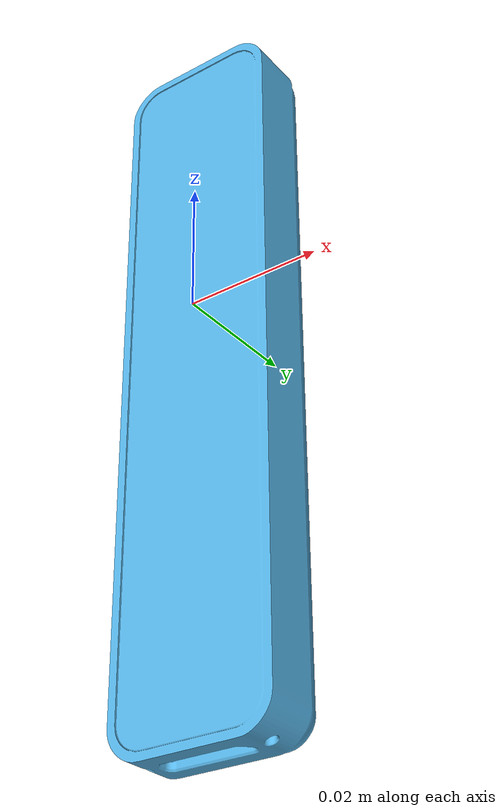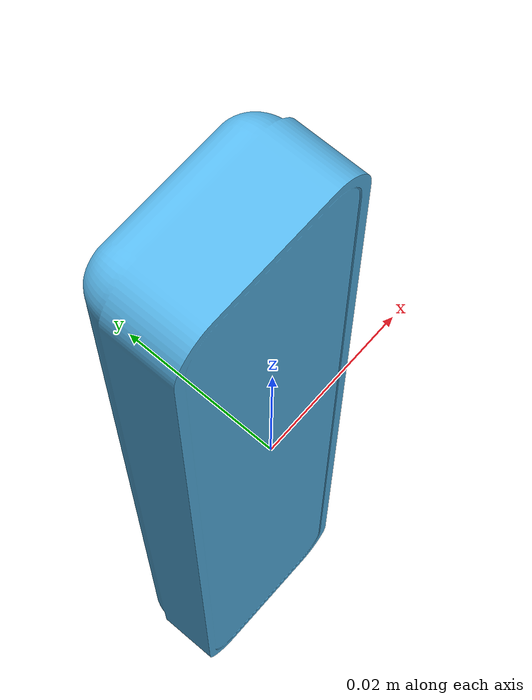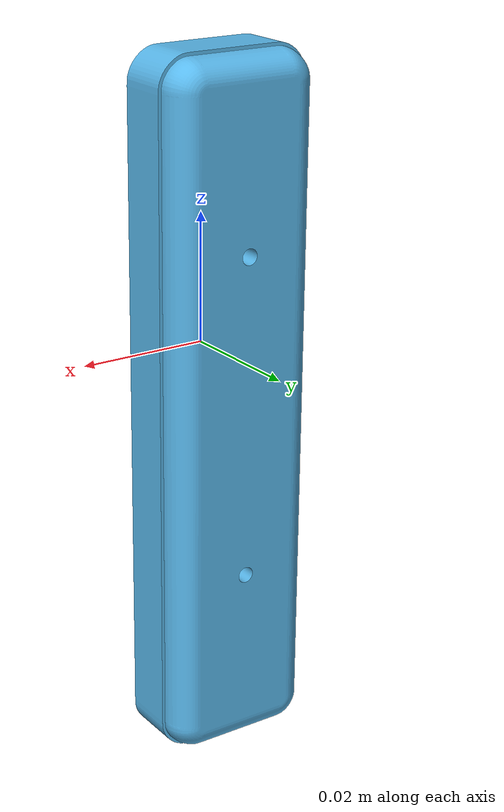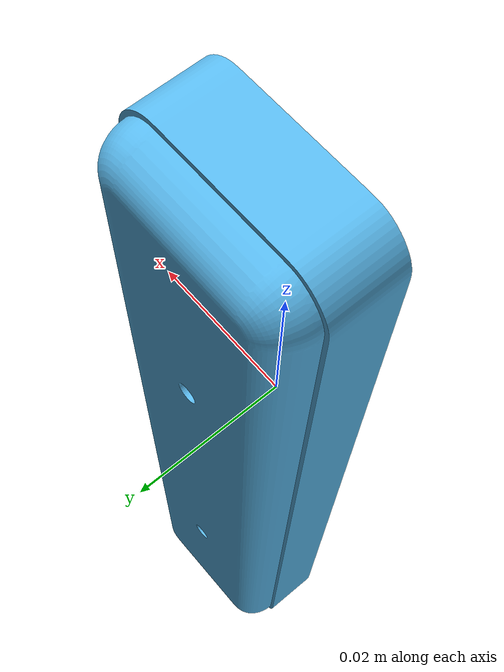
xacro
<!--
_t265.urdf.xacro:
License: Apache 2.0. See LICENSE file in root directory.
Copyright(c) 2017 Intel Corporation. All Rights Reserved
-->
<?xml version="1.0"?>
<robot name="realsense2_camera" xmlns:xacro="http://ros.org/wiki/xacro">
  <xacro:arg name="use_nominal_extrinsics" default="false"/>
  <xacro:include filename="$(find realsense2_description)/urdf/_t265.urdf.xacro" />

  <link name="base_link" />
  <xacro:sensor_t265 parent="base_link" use_nominal_extrinsics="$(arg use_nominal_extrinsics)">
    <origin xyz="0 0 0" rpy="0 0 0"/>
  </xacro:sensor_t265>
</robot>

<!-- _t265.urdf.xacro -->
<robot name="sensor_t265" xmlns:xacro="http://ros.org/wiki/xacro">
  <!--Includes-->
  <xacro:include filename="$(find realsense2_description)/urdf/_materials.urdf.xacro" />
  <xacro:include filename="$(find realsense2_description)/urdf/_t265.gazebo.xacro"/>

  <xacro:macro name="sensor_t265" params="parent *origin name:=camera odom_frame:=odom_frame use_nominal_extrinsics:=false">
    <xacro:property name="deg_to_rad" value="0.01745329251994329577" />
    <xacro:property name="M_PI" value="3.1415926535897931" />

    <!-- The following values are approximate, and the camera node
     publishing TF values with actual calibrated camera extrinsic values -->
    <xacro:property name="fisheye1_offset_x" value="0.0"/>
    <xacro:property name="fisheye1_offset_y" value="0.03200"/>
    <xacro:property name="fisheye1_offset_z" value="0.0"/>

    <xacro:property name="fisheye2_offset_x" value="0.0"/>
    <xacro:property name="fisheye2_offset_y" value="-0.03200"/>
    <xacro:property name="fisheye2_offset_z" value="0.0"/>

    <xacro:property name="imu_offset_x" value="0.00655"/>
    <xacro:property name="imu_offset_y" value="0.022"/>
    <xacro:property name="imu_offset_z" value="0.0"/>

    <xacro:property name="module_center_offset" value="0.00910"/>

    <!-- camera body, with origin at camera_link -->
    <joint name="${name}_joint" type="fixed">
      <xacro:insert_block name="origin" />
      <parent link="${parent}"/>
      <child link="${name}_frame" />
    </joint>
    <link name="${name}_frame">
      <visual>
        <origin xyz="0 0 0" rpy="${M_PI/2} 0 -${M_PI/2}" />
        <geometry>
            <mesh filename="package://realsense2_description/meshes/t265.stl" />
        </geometry>
        <material name="aluminum" />
      </visual>
      <collision>
        <origin xyz="0 0 0" rpy="${M_PI/2} 0 -${M_PI/2}"/>
        <geometry>
          <mesh filename="package://realsense2_description/meshes/t265.stl" />
        </geometry>
      </collision>
      <inertial>
        <!-- The following are not reliable values, and should not be used for modeling -->
        <mass value="0.068024" />
        <origin xyz="0 0 0" rpy="${M_PI/2} 0 -${M_PI/2}" />
        <inertia ixx="0.0000039782" ixy="0.0" ixz="0.000000034641" iyy="0.000065045" iyz="0.0" izz="0.000067499" />
      </inertial>
    </link>

    <joint name="${name}_frame_joint" type="fixed">
      <origin xyz="0 ${module_center_offset} 0" rpy="0 ${M_PI} 0"/>
      <parent link="${name}_frame"/>
      <child link="${name}_link" />
    </joint>
    <link name="${name}_link" />

    <!-- Use the nominal extrinsics between camera frames if the calibrated extrinsics aren't being published. e.g. running the device in simulation  -->
    <xacro:if value="${use_nominal_extrinsics}">
      <joint name="${name}_fisheye1_rgb_joint" type="fixed">
        <origin xyz="${fisheye1_offset_x} ${fisheye1_offset_y} ${fisheye1_offset_z}" rpy="0 -${M_PI} 0"/>
        <parent link="${name}_link"/>
        <child link="${name}_fisheye1_rgb_frame" />
      </joint>
      <link name="${name}_fisheye1_rgb_frame"/>

      <joint name="${name}_fisheye2_rgb_joint" type="fixed">
        <origin xyz="${fisheye2_offset_x} ${fisheye2_offset_y} ${fisheye2_offset_z}" rpy="0 -${M_PI} 0"/>
        <parent link="${name}_link"/>
        <child link="${name}_fisheye2_rgb_frame" />
      </joint>
      <link name="${name}_fisheye2_rgb_frame"/>

      <joint name="${name}_fisheye1_optical_joint" type="fixed">
        <origin xyz="0 0 0" rpy="-${M_PI/2} 0 -${M_PI/2}"/>
        <parent link="${name}_fisheye1_rgb_frame"/>
        <child link="${name}_fisheye1_optical_frame" />
      </joint>
      <link name="${name}_fisheye1_optical_frame"/>

      <joint name="${name}_fisheye2_optical_joint" type="fixed">
        <origin xyz="0 0 0" rpy="-${M_PI/2} 0 -${M_PI/2}"/>
        <parent link="${name}_fisheye2_rgb_frame"/>
        <child link="${name}_fisheye2_optical_frame" />
      </joint>
      <link name="${name}_fisheye2_optical_frame"/>

      <!-- camera depth joints and links -->
      <joint name="${name}_gyro_joint" type="fixed">
        <origin xyz="${imu_offset_x} ${imu_offset_y} ${imu_offset_z}" rpy="0 0 ${M_PI}"/>
        <parent link="${name}_link"/>
        <child link="${name}_gyro_frame" />
      </joint>
      <link name="${name}_gyro_frame"/>
      <joint name="${name}_accel_joint" type="fixed">
        <origin xyz="${imu_offset_x} ${imu_offset_y} ${imu_offset_z}" rpy="0 0 ${M_PI}"/>
        <parent link="${name}_link"/>
        <child link="${name}_accel_frame" />
      </joint>
      <link name="${name}_accel_frame"/>

      <joint name="${name}_gyro_optical_joint" type="fixed">
        <origin xyz="0 0 0" rpy="-${M_PI/2} 0 -${M_PI/2}"/>
        <parent link="${name}_gyro_frame"/>
        <child link="${name}_gyro_optical_frame" />
      </joint>
      <link name="${name}_gyro_optical_frame"/>
      <joint name="${name}_accel_optical_joint" type="fixed">
        <origin xyz="0 0 0" rpy="-${M_PI/2} 0 -${M_PI/2}"/>
        <parent link="${name}_accel_frame"/>
        <child link="${name}_accel_optical_frame" />
      </joint>
      <link name="${name}_accel_optical_frame"/>
    </xacro:if>

    <!-- Realsense Gazebo Plugin -->
    <xacro:gazebo_t265 camera_name="${name}" fisheye1_reference_link="${name}_fisheye1_rgb_frame" fisheye2_reference_link="${name}_fisheye2_rgb_frame" fisheye1_optical_frame="${name}_fisheye1_optical_frame" fisheye2_optical_frame="${name}_fisheye2_optical_frame"/>

  </xacro:macro>

</robot>
